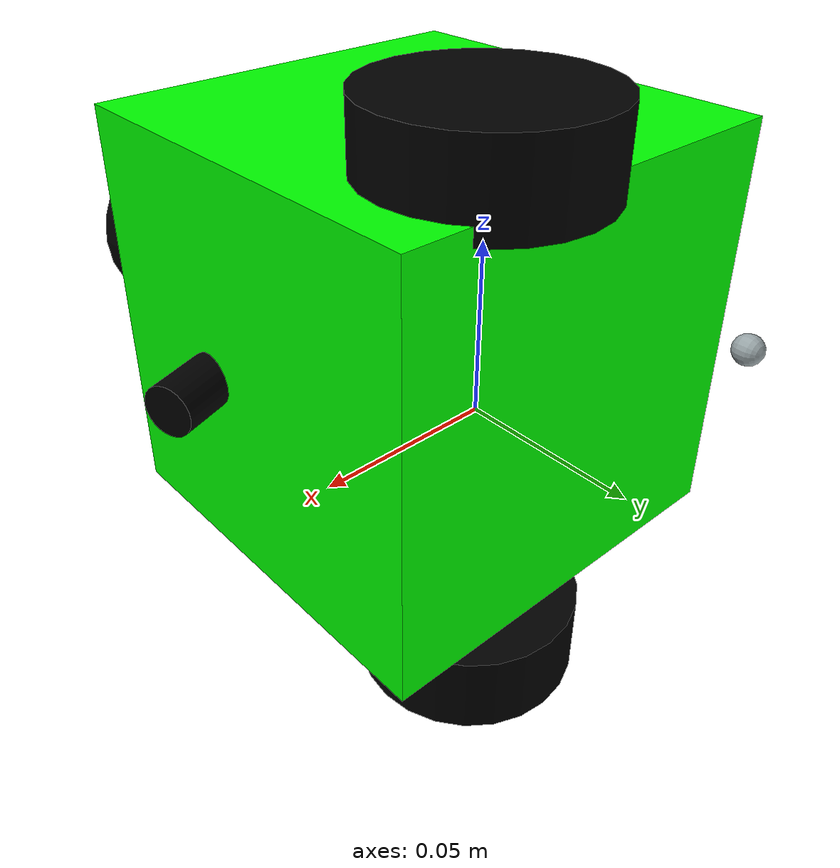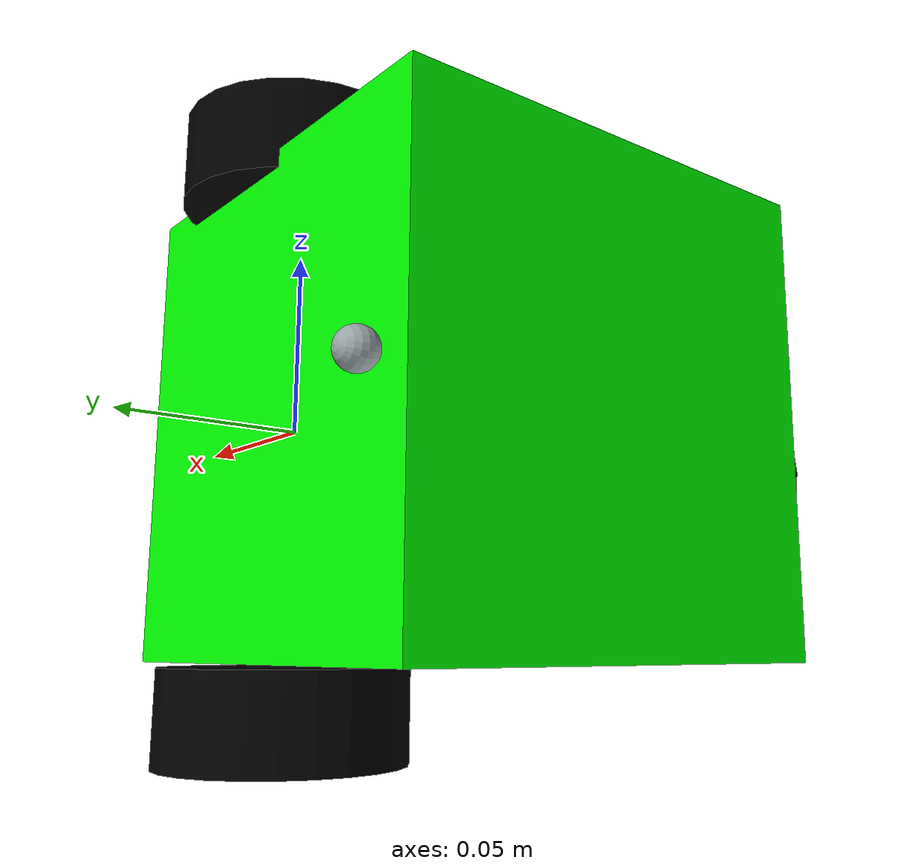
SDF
<?xml version="1.0" ?>
<sdf version="1.9">
  <model name="diffbot">
    <pose>0 0 0 0 0 0</pose>
    <static>false</static>

    <frame name="base_footprint" attached_to="base_link">
      <pose>0 0.035 0 1.5708 0 0</pose>
    </frame>

    <!-- base_link -->
    <link name="base_link">
      <pose relative_to="__model__">0 0 0 0 0 0</pose>
      <inertial>
        <pose>-0.025609 -0.0090093176 0.034957 0 0 0</pose>
        <mass>100</mass>
        <inertia>
          <ixx>0.0016616</ixx>
          <ixy>-5.2805e-05</ixy>
          <ixz>-3.0797e-06</ixz>
          <iyy>0.0024755</iyy>
          <iyz>-1.1469e-06</iyz>
          <izz>0.0030448</izz>
        </inertia>
      </inertial>
      <visual name="base_link_visual">
        <pose>-0.02 -0.044 0.003 0 0 0</pose>
        <geometry>
          <box>
            <size>0.13 0.13 0.13</size>
          </box>
        </geometry>
        <material>
          <ambient>0 1 0 1</ambient>
          <diffuse>0 1 0 1</diffuse>
        </material>
      </visual>
      <collision name="base_link_collision">
        <pose>-0.02 -0.044 0.003 0 0 0</pose>
        <geometry>
          <box>
            <size>0.13 0.13 0.13</size>
          </box>
        </geometry>
      </collision>
    </link>

    <!-- caster_ball_link -->
    <link name="caster_ball_link">
      <pose relative_to="base_link">-0.083 0.0208 0 -1.5708 0 3.1416</pose>
      <inertial>
        <pose>-1.8666e-06 -8.4152e-07 -0.0059479 0 0 0</pose>
        <mass>0.011917</mass>
        <inertia>
          <ixx>2.5586e-07</ixx>
          <ixy>6.7546e-11</ixy>
          <ixz>3.0679e-11</ixz>
          <iyy>1.8138e-07</iyy>
          <iyz>1.7478e-14</iyz>
          <izz>2.6388e-07</izz>
        </inertia>
      </inertial>
      <visual name="caster_ball_visual">
        <pose>0 0 -0.011 0 0 0</pose>
        <geometry>
          <sphere>
                <radius>0.005</radius>
          </sphere>
        </geometry>
        <material>
          <ambient>0.61176 0.65882 0.67059 1</ambient>
          <diffuse>0.61176 0.65882 0.67059 1</diffuse>
        </material>
      </visual>
      <collision name="caster_ball_collision">
        <pose>0 0 -0.011 0 0 0</pose>
        <geometry>
          <sphere>
                <radius>0.005</radius>
          </sphere>
        </geometry>
      </collision>
    </link>

    <!-- camera_link -->
    <link name="camera_link">
      <pose relative_to="base_link">0.053557 -0.057568 0 1.9199 -1.5708 3.1416</pose>
      <inertial>
        <pose>7.2979e-05 -0.0036847 -0.0021354 0 0 0</pose>
        <mass>0.068956</mass>
        <inertia>
          <ixx>2.4451e-06</ixx>
          <ixy>1.5517e-12</ixy>
          <ixz>-1.8066e-08</ixz>
          <iyy>3.8509e-06</iyy>
          <iyz>1.5741e-11</iyz>
          <izz>2.7785e-06</izz>
        </inertia>
      </inertial>
      <visual name="camera_visual">
        <pose>0 0 0 1.5707 0 0</pose>
        <geometry>
          <cylinder>
                <radius>0.008</radius>
                <length>0.02</length>
          </cylinder>
        </geometry>
        <material>
          <ambient>0 0 0 1</ambient>
          <diffuse>0 0 0 1</diffuse>
        </material>
      </visual>
      <collision name="camera_collision">
        <pose>0 0 0 1.5707 0 0</pose>
        <geometry>
          <mesh>
            <cylinder>
                <radius>0.008</radius>
                <length>0.02</length>
          </cylinder>
          </mesh>
        </geometry>
      </collision>
     <sensor name="color" type="camera">
        <pose>0 0.0325 0.0125 0 0 0</pose>
        <update_rate>6</update_rate>
        <always_on>0</always_on>
        <camera>
          <horizontal_fov>1.20427718</horizontal_fov>
          <image>
            <width>848</width>
            <height>480</height>
          </image>
          <clip>
            <near>0.1</near>
            <far>50</far>
          </clip>
          <lens>
            <intrinsics>
              <fx>615.9603271484375</fx>
              <fy>616.227294921875</fy>
              <cx>419.83026123046875</cx>
              <cy>245.1431427001953</cy>
              <s>0</s>
            </intrinsics>
          </lens>
        </camera>
        <ignition_frame_id>camera_link</ignition_frame_id>
      </sensor>
    </link>

    <!-- lidar_link -->
    <link name="lidar_link">
      <!-- URDF raised frame by +0.045 in z and shifted mesh down by 0.045 -->
      <pose relative_to="base_link">-0.011026 -0.1512 0 1.5708 0 0</pose>
      <inertial>
        <pose>-0.0065398705841951 0.000690713934940602 0.0309531855778308 0 0 0</pose>
        <mass>0.564294014597891</mass>
        <inertia>
          <ixx>0.000142259766419758</ixx>
          <ixy>-2.48879198210457e-06</ixy>
          <ixz>2.55066150802879e-06</ixz>
          <iyy>0.000186813526823412</iyy>
          <iyz>8.53957008589798e-08</iyz>
          <izz>0.000308569075147343</izz>
        </inertia>
      </inertial>
      <visual name="lidar_visual">
        <pose>0 0 0 0 0 0</pose>
        <geometry>
          <cylinder>
                <radius>0.035</radius>
                <length>0.03</length>
          </cylinder>
        </geometry>
        <material>
          <ambient>0 0 0  1</ambient>
          <diffuse>0 0 0 1</diffuse>
        </material>
      </visual>
      <collision name="lidar_collision">
         <pose>0 0 0 0 0 0</pose>
        <geometry>
          <cylinder>
                <radius>0.035</radius>
                <length>0.03</length>
          </cylinder>
        </geometry>
      </collision>

    <sensor name="scan_front" type="gpu_lidar">
        <always_on>true</always_on>
        <update_rate>10</update_rate>
        <pose>0 0 0 0 0 0</pose>
         <lidar>
          <scan>
            <horizontal>
              <samples>720</samples>
              <resolution>1</resolution>
              <min_angle>-1.5707963</min_angle>  <!-- -90deg -->
              <max_angle> 1.5707963</max_angle>  <!-- +90deg -->
            </horizontal>
          </scan>
          <range>
            <min>0.12</min>
            <max>10.0</max>
            <resolution>0.01</resolution>
          </range>
        </lidar>
        <ignition_frame_id>lidar_link</ignition_frame_id>
      </sensor>
    </link>

    <!-- left_wheel_link -->
    <link name="left_wheel_link">
      <pose relative_to="base_link">0 0 0.0575 1.5708 0 0</pose>
      <inertial>
        <pose>-3.04495944265183e-05 0.0183179040454366 -1.07396547774597e-07 0 0 0</pose>
        <mass>0.388137366198046</mass>
        <inertia>
          <ixx>0.000163568162825962</ixx>
          <ixy>-1.71522947947033e-07</ixy>
          <ixz>-2.55253489205791e-08</ixz>
          <iyy>0.000281670214792073</iyy>
          <iyz>-1.06397401901507e-09</iyz>
          <izz>0.000163656330155147</izz>
        </inertia>
      </inertial>
      <visual name="left_wheel_visual">
        <pose>0 0.018 0 1.5707 0 0</pose>
        <geometry>
          <cylinder>
                <radius>0.033</radius>
                <length>0.025</length>
            </cylinder>
        </geometry>
        <material>
          <ambient>0 0 0 1</ambient>
          <diffuse>0 0 0 1</diffuse>
        </material>
      </visual>
      <collision name="left_wheel_collision">
        <pose>0 0.018 0 1.5707 0 0</pose>
        <geometry>
          <cylinder>
                <radius>0.033</radius>
                <length>0.025</length>
          </cylinder>
        </geometry>
      </collision>
    </link>

    <!-- right_wheel_link -->
    <link name="right_wheel_link">
      <pose relative_to="base_link">0 0 -0.0575 -1.5708 3.14359 3.14359</pose>
      <inertial>
        <pose>-3.04495944265183e-05 0.0183179040454366 -1.07396547774597e-07 0 0 0</pose>
        <mass>0.388137366198046</mass>
        <inertia>
          <ixx>0.000163568162825962</ixx>
          <ixy>-1.71522947947033e-07</ixy>
          <ixz>-2.55253489205791e-08</ixz>
          <iyy>0.000281670214792073</iyy>
          <iyz>-1.06397401901507e-09</iyz>
          <izz>0.000163656330155147</izz>
        </inertia>
      </inertial>
      <visual name="right_wheel_visual">
        <pose>0 -0.018 0 1.5707 0 0</pose>
        <geometry>
          <cylinder>
                <radius>0.033</radius>
                <length>0.025</length>
            </cylinder>
        </geometry>
        <material>
          <ambient>0 0 0 1</ambient>
          <diffuse>0 0 0 1</diffuse>
        </material>
      </visual>
      <collision name="right_wheel_collision">
        <pose>0 -0.018 0 1.5707 0 0</pose>
        <geometry>
          <cylinder>
                <radius>0.033</radius>
                <length>0.025</length>
          </cylinder>
        </geometry>
      </collision>
    </link>

    <!-- Joints -->

    <!-- caster fixed -->
    <joint name="caster_ball_fix_joint" type="fixed">
      <parent>base_link</parent>
      <child>caster_ball_link</child>
    </joint>

    <!-- camera fixed -->
    <joint name="camera_fix_joint" type="fixed">
      <parent>base_link</parent>
      <child>camera_link</child>
    </joint>

    <!-- lidar fixed -->
    <joint name="lidar_fix_joint" type="fixed">
      <parent>base_link</parent>
      <child>lidar_link</child>
    </joint>

    <!-- wheels continuous -->
    <joint name="left_wheel_continuous_joint" type="revolute">
      <parent>base_link</parent>
      <child>left_wheel_link</child>
      <axis>
        <xyz>0 1 0</xyz>
        <limit>
          <effort>10</effort>
        </limit>
        <dynamics>
          <damping>10.0</damping>
          <friction>0.5</friction>
        </dynamics>
      </axis>

    </joint>

    <joint name="right_wheel_continuous_joint" type="revolute">
      <parent>base_link</parent>
      <child>right_wheel_link</child>
      <axis>
        <xyz>0 1 0</xyz>
        <limit>
          <effort>10</effort>
        </limit>
        <dynamics>
          <damping>10.0</damping>
          <friction>0.5</friction>
        </dynamics>
      </axis>
    </joint>

<!-- CONTROLERS PLUGINS -->
    <!-- DIFF DRIVE PLUGIN / WHEELS CONTROLER -->
    <plugin filename="ignition-gazebo-diff-drive-system" name="ignition::gazebo::systems::DiffDrive">
      <left_joint>left_wheel_continuous_joint</left_joint>
      <right_joint>right_wheel_continuous_joint</right_joint>
      <wheel_separation>0.15</wheel_separation>
      <wheel_radius>0.033</wheel_radius>
      <odom_publish_frequency>20</odom_publish_frequency>
      <frame_id>odom</frame_id>
      <child_frame_id>base_link</child_frame_id>
    </plugin>

    <!-- GROUND ODOMETRY POSITION STATE PUBLISHER (FAKE LOCALIZATION) -->
    <plugin filename="ignition-gazebo-pose-publisher-system" name="ignition::gazebo::systems::PosePublisher">
      <publish_link_pose>true</publish_link_pose>
      <publish_collision_pose>false</publish_collision_pose>
      <publish_visual_pose>false</publish_visual_pose>
      <publish_sensor_pose>false</publish_sensor_pose>
      <publish_nested_model_pose>true</publish_nested_model_pose>
      <update_frequency>20</update_frequency>
    </plugin>

    <!-- JOINT STATE PUBLISHER-->
    <plugin filename="ignition-gazebo-joint-state-publisher-system"
            name="ignition::gazebo::systems::JointStatePublisher">
      <topic>/joint_state</topic>

      <!-- Optional: publish only specific joints (repeatable) -->
    </plugin>

  </model>
</sdf>
